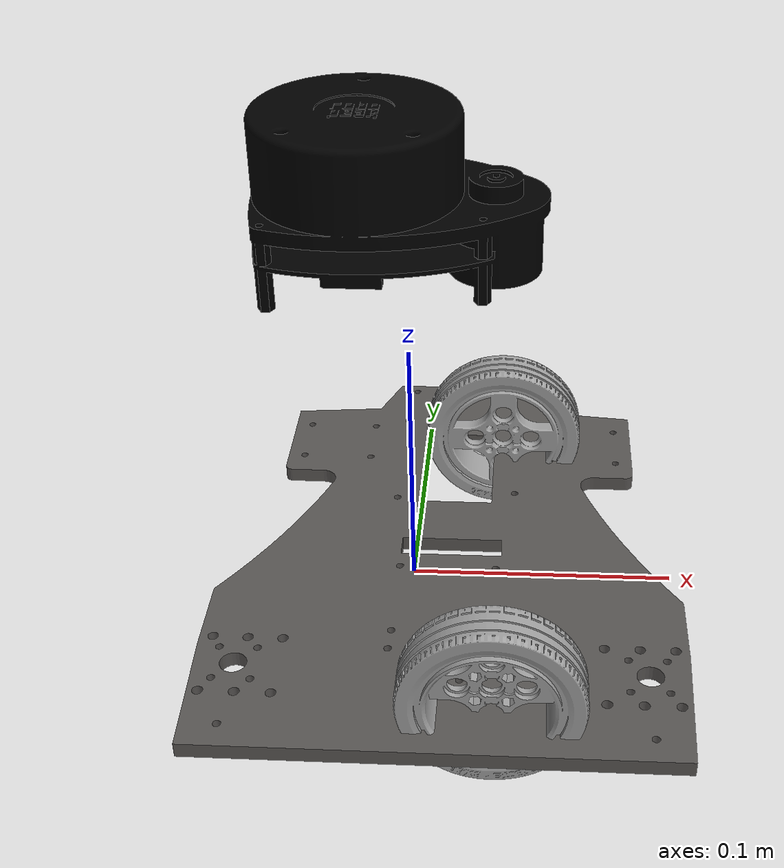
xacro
<?xml version="1.0" ?>
<robot name="slambot" xmlns:xacro="http://www.ros.org/wiki/xacro">

<xacro:include filename="$(find slambot_description)/urdf/materials.xacro" />
<xacro:include filename="$(find slambot_description)/urdf/slambot.trans" />
<xacro:include filename="$(find slambot_description)/gazebo/slambot_materials.gazebo" />
<xacro:include filename="$(find slambot_description)/gazebo/slambot_physics.gazebo" />
<xacro:include filename="$(find slambot_description)/gazebo/slambot_plugins.gazebo" />

<link name="base_footprint"/>
<link name="base_link">
  <inertial>
    <origin xyz="0.0028609830961275496 -0.00028636548319819235 0.07416570528182598" rpy="0 0 0"/>
    <mass value="5.29438449819002"/>
    <inertia ixx="0.018437" iyy="0.018264" izz="0.012718" ixy="4e-05" iyz="5.8e-05" ixz="0.000436"/>
  </inertial>
  <visual>
    <origin xyz="0 0 0" rpy="0 0 0"/>
    <geometry>
      <mesh filename="package://slambot_description/meshes/base_link.stl" scale="0.001 0.001 0.001"/>
    </geometry>
    <material name="opaque898684"/>
  </visual>
  <collision>
    <origin xyz="0 0 0" rpy="0 0 0"/>
    <geometry>
      <mesh filename="package://slambot_description/meshes/base_link.stl" scale="0.001 0.001 0.001"/>
    </geometry>
  </collision>
</link>

<link name="wheel_right_1">
  <inertial>
    <origin xyz="1.4796994004112607e-06 -0.00781748340988625 8.287650255650592e-08" rpy="0 0 0"/>
    <mass value="0.2346100571054497"/>
    <inertia ixx="9e-05" iyy="0.000167" izz="9e-05" ixy="0.0" iyz="-0.0" ixz="-0.0"/>
  </inertial>
  <visual>
    <origin xyz="-0.03275 0.0722 -0.033" rpy="0 0 0"/>
    <geometry>
      <mesh filename="package://slambot_description/meshes/wheel_right_1.stl" scale="0.001 0.001 0.001"/>
    </geometry>
    <material name="steel_satin"/>
  </visual>
  <collision>
    <origin xyz="-0.03275 0.0722 -0.033" rpy="0 0 0"/>
    <geometry>
      <mesh filename="package://slambot_description/meshes/wheel_right_1.stl" scale="0.001 0.001 0.001"/>
    </geometry>
  </collision>
</link>

<link name="wheel_left_1">
  <inertial>
    <origin xyz="1.4796994003002384e-06 0.007817483409885487 -8.287650261201707e-08" rpy="0 0 0"/>
    <mass value="0.2346100571054497"/>
    <inertia ixx="9e-05" iyy="0.000167" izz="9e-05" ixy="-0.0" iyz="-0.0" ixz="0.0"/>
  </inertial>
  <visual>
    <origin xyz="-0.03275 -0.0722 -0.0333" rpy="0 0 0"/>
    <geometry>
      <mesh filename="package://slambot_description/meshes/wheel_left_1.stl" scale="0.001 0.001 0.001"/>
    </geometry>
    <material name="steel_satin"/>
  </visual>
  <collision>
    <origin xyz="-0.03275 -0.0722 -0.0333" rpy="0 0 0"/>
    <geometry>
      <mesh filename="package://slambot_description/meshes/wheel_left_1.stl" scale="0.001 0.001 0.001"/>
    </geometry>
  </collision>
</link>

<link name="wheel_caster_1">
  <inertial>
    <origin xyz="-0.045000594596254544 1.735967801928781e-05 -0.00355326377799727" rpy="0 0 0"/>
    <mass value="0.0054901244015141525"/>
    <inertia ixx="0.0" iyy="0.0" izz="0.0" ixy="-0.0" iyz="0.0" ixz="0.0"/>
  </inertial>
  <visual>
    <origin xyz="-0.0 0.0 -0.01105" rpy="0 0 0"/>
    <geometry>
      <mesh filename="package://slambot_description/meshes/wheel_caster_1.stl" scale="0.001 0.001 0.001"/>
    </geometry>
    <material name="steel_satin"/>
  </visual>
  <collision>
    <origin xyz="-0.0 0.0 -0.01105" rpy="0 0 0"/>
    <geometry>
      <mesh filename="package://slambot_description/meshes/wheel_caster_1.stl" scale="0.001 0.001 0.001"/>
    </geometry>
  </collision>
</link>

<link name="lidar_1">
  <inertial>
    <origin xyz="-0.008711210990347865 -9.19261111398959e-05 0.03526812773284044" rpy="0 0 0"/>
    <mass value="1.3392997077576572"/>
    <inertia ixx="0.000619" iyy="0.000967" izz="0.001105" ixy="-1e-06" iyz="-3e-06" ixz="0.000159"/>
  </inertial>
  <visual>
    <origin xyz="-0.0 -0.0 -0.15105" rpy="0 0 0"/>
    <geometry>
      <mesh filename="package://slambot_description/meshes/lidar_1.stl" scale="0.001 0.001 0.001"/>
    </geometry>
    <material name="coating_black_oxide"/>
  </visual>
  <collision>
    <origin xyz="-0.0 -0.0 -0.15105" rpy="0 0 0"/>
    <geometry>
      <mesh filename="package://slambot_description/meshes/lidar_1.stl" scale="0.001 0.001 0.001"/>
    </geometry>
  </collision>
</link>

<joint name="base_joint" type="fixed">
  <parent link="base_footprint"/>
  <child link="base_link"/>
</joint>

<joint name="motor_right" type="continuous">
  <origin xyz="0.03275 -0.0722 0.033" rpy="0 0 0"/>
  <parent link="base_link"/>
  <child link="wheel_right_1"/>
  <axis xyz="0.0 1.0 0.0"/>
</joint>

<joint name="motor_left" type="continuous">
  <origin xyz="0.03275 0.0722 0.0333" rpy="0 0 0"/>
  <parent link="base_link"/>
  <child link="wheel_left_1"/>
  <axis xyz="-0.0 1.0 -0.0"/>
</joint>

<joint name="caster_joint" type="fixed">
  <origin xyz="0.0 0.0 0.01105" rpy="0 0 0"/>
  <parent link="base_link"/>
  <child link="wheel_caster_1"/>
</joint>

<joint name="lidar_joint" type="fixed">
  <origin xyz="0.0 0.0 0.15105" rpy="0 0 0"/>
  <parent link="base_link"/>
  <child link="lidar_1"/>
</joint>

</robot>

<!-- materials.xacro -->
<robot name="slambot" xmlns:xacro="http://www.ros.org/wiki/xacro" >

<material name="silver_default">
  <color rgba="0.700 0.700 0.700 1.000"/>
</material>
<material name="opaque898684">
  <color rgba="0.34901960784313724 0.33725490196078434 0.32941176470588235 1.0"/>
</material>
<material name="steel_satin">
  <color rgba="0.6274509803921569 0.6274509803921569 0.6274509803921569 1.0"/>
</material>
<material name="coating_black_oxide">
  <color rgba="0.0 0.0 0.0 1.0"/>
</material>

</robot>

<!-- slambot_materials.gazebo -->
<robot name="slambot" xmlns:xacro="http://www.ros.org/wiki/xacro" >

<xacro:property name="body_color" value="Gazebo/Yellow" />
<xacro:property name="wheel_color" value="Gazebo/Black" />
<xacro:property name="lidar_color" value="Gazebo/Black" />

<gazebo reference="base_link">
  <material>${body_color}</material>
</gazebo>

<gazebo reference="wheel_right_1">
  <material>${wheel_color}</material>
</gazebo>

<gazebo reference="wheel_left_1">
  <material>${wheel_color}</material>
</gazebo>

<gazebo reference="wheel_caster_1">
  <material>${wheel_color}</material>
</gazebo>

<gazebo reference="lidar_1">
  <material>${lidar_color}</material>
</gazebo>

</robot>
